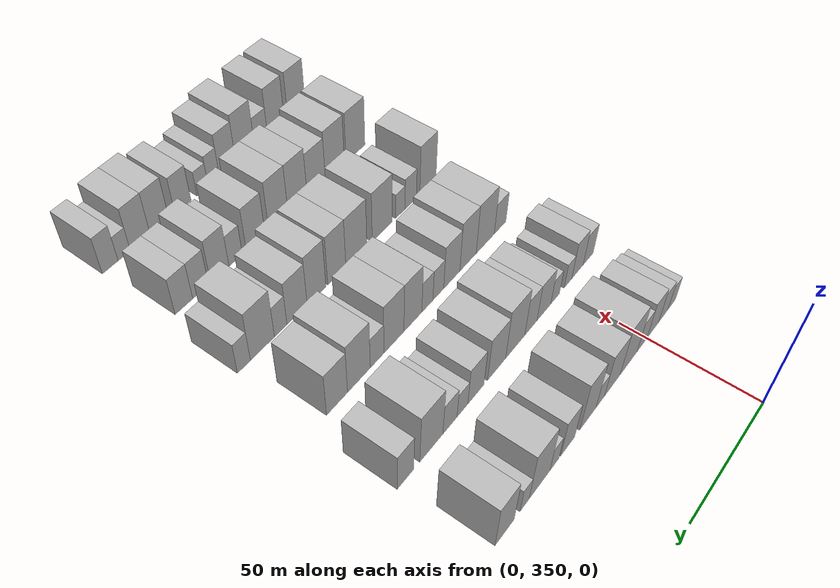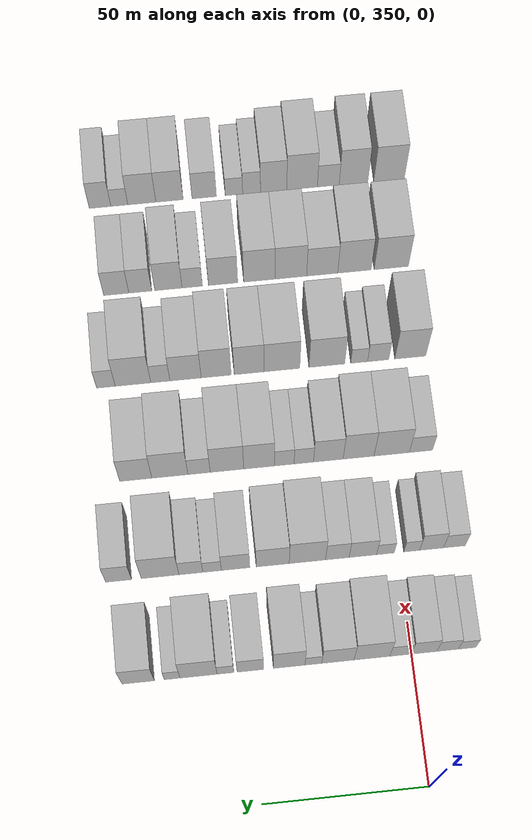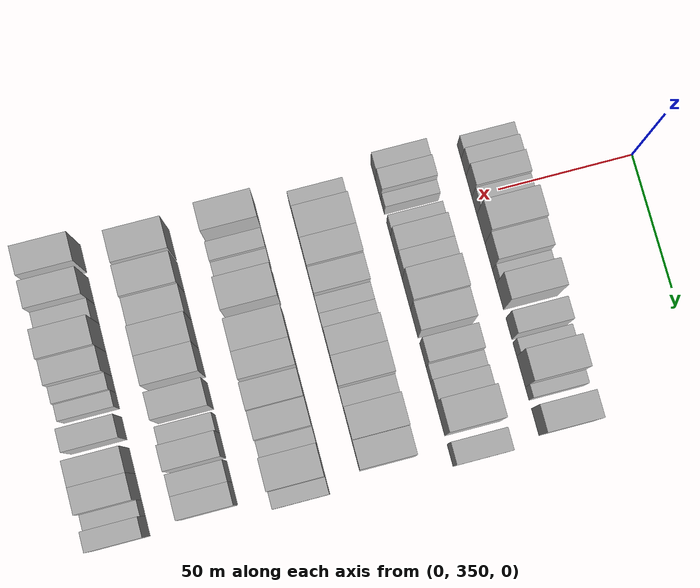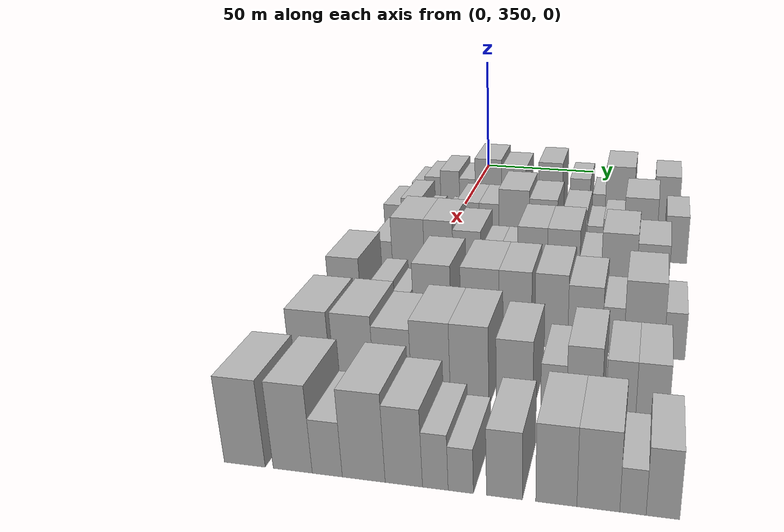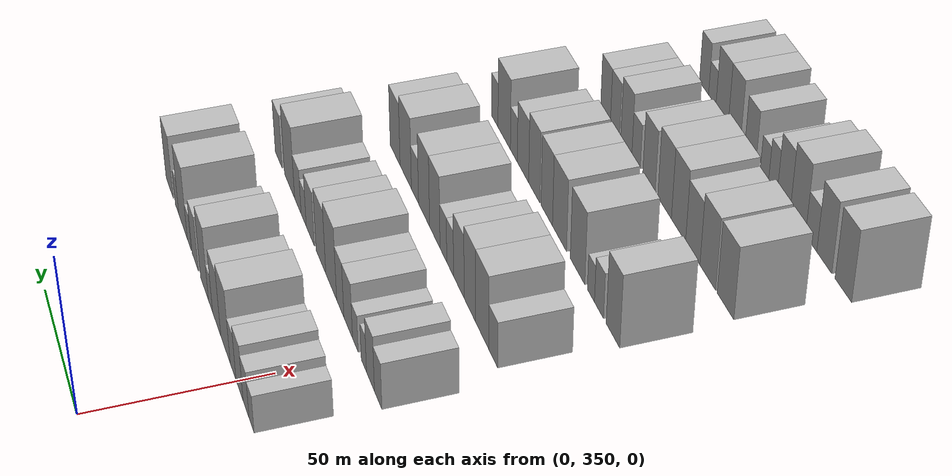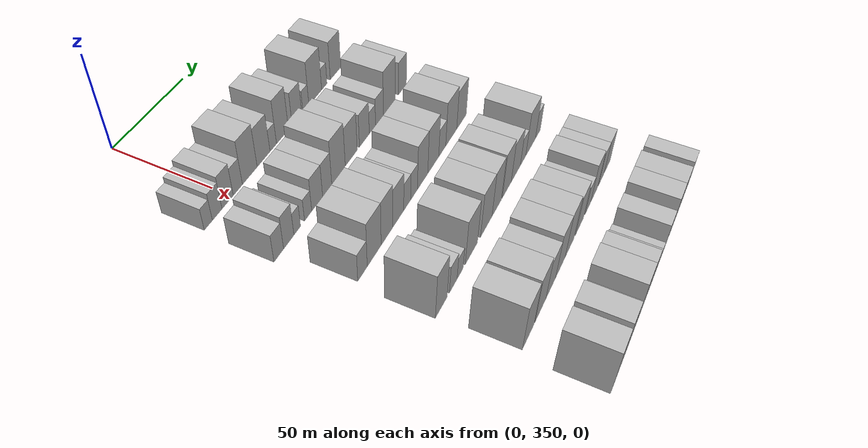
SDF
<sdf version="1.6">
 <world name="default">
  <model name="building_99">
   <static>1</static>
   <pose>50.0000 332.9799 0 0.000000 0.000000 0.000000</pose>
   <link name="link">
    <pose>0 0 6.00 0 0 0</pose>
    <collision name="collision"><geometry><box><size>20.0000 5.4703 12.0000</size></box></geometry></collision>
    <visual name="visual">
     <cast_shadows>0</cast_shadows>
     <geometry><box><size>20.0000 5.4703 12.0000</size></box></geometry>
     <material>
      <script>
       <uri>model://HANNAS_wall/materials/scripts</uri>
       <uri>model://HANNAS_wall/materials/textures</uri>
       <name>vrc/HANNAS_wall</name>
      </script>
     </material>
    </visual>
   </link>
  </model>
  <model name="building_100">
   <static>1</static>
   <pose>50.0000 339.0162 0 0.000000 0.000000 0.000000</pose>
   <link name="link">
    <pose>0 0 7.50 0 0 0</pose>
    <collision name="collision"><geometry><box><size>20.0000 6.6022 15.0000</size></box></geometry></collision>
    <visual name="visual">
     <cast_shadows>0</cast_shadows>
     <geometry><box><size>20.0000 6.6022 15.0000</size></box></geometry>
     <material>
      <script>
       <uri>model://HANNAS_wall/materials/scripts</uri>
       <uri>model://HANNAS_wall/materials/textures</uri>
       <name>vrc/HANNAS_wall</name>
      </script>
     </material>
    </visual>
   </link>
  </model>
  <model name="building_101">
   <static>1</static>
   <pose>50.0000 346.2824 0 0.000000 0.000000 0.000000</pose>
   <link name="link">
    <pose>0 0 9.00 0 0 0</pose>
    <collision name="collision"><geometry><box><size>20.0000 7.9302 18.0000</size></box></geometry></collision>
    <visual name="visual">
     <cast_shadows>0</cast_shadows>
     <geometry><box><size>20.0000 7.9302 18.0000</size></box></geometry>
     <material>
      <script>
       <uri>model://HANNAS_wall/materials/scripts</uri>
       <uri>model://HANNAS_wall/materials/textures</uri>
       <name>vrc/HANNAS_wall</name>
      </script>
     </material>
    </visual>
   </link>
  </model>
  <model name="building_102">
   <static>1</static>
   <pose>50.0000 353.5440 0 0.000000 0.000000 0.000000</pose>
   <link name="link">
    <pose>0 0 7.50 0 0 0</pose>
    <collision name="collision"><geometry><box><size>20.0000 6.5930 15.0000</size></box></geometry></collision>
    <visual name="visual">
     <cast_shadows>0</cast_shadows>
     <geometry><box><size>20.0000 6.5930 15.0000</size></box></geometry>
     <material>
      <script>
       <uri>model://HANNAS_wall/materials/scripts</uri>
       <uri>model://HANNAS_wall/materials/textures</uri>
       <name>vrc/HANNAS_wall</name>
      </script>
     </material>
    </visual>
   </link>
  </model>
  <model name="building_103">
   <static>1</static>
   <pose>50.0000 362.3261 0 0.000000 0.000000 0.000000</pose>
   <link name="link">
    <pose>0 0 12.00 0 0 0</pose>
    <collision name="collision"><geometry><box><size>20.0000 10.9712 24.0000</size></box></geometry></collision>
    <visual name="visual">
     <cast_shadows>0</cast_shadows>
     <geometry><box><size>20.0000 10.9712 24.0000</size></box></geometry>
     <material>
      <script>
       <uri>model://HANNAS_wall/materials/scripts</uri>
       <uri>model://HANNAS_wall/materials/textures</uri>
       <name>vrc/HANNAS_wall</name>
      </script>
     </material>
    </visual>
   </link>
  </model>
  <model name="building_104">
   <static>1</static>
   <pose>50.0000 372.7573 0 0.000000 0.000000 0.000000</pose>
   <link name="link">
    <pose>0 0 10.50 0 0 0</pose>
    <collision name="collision"><geometry><box><size>20.0000 9.8912 21.0000</size></box></geometry></collision>
    <visual name="visual">
     <cast_shadows>0</cast_shadows>
     <geometry><box><size>20.0000 9.8912 21.0000</size></box></geometry>
     <material>
      <script>
       <uri>model://HANNAS_wall/materials/scripts</uri>
       <uri>model://HANNAS_wall/materials/textures</uri>
       <name>vrc/HANNAS_wall</name>
      </script>
     </material>
    </visual>
   </link>
  </model>
  <model name="building_105">
   <static>1</static>
   <pose>50.0000 380.2730 0 0.000000 0.000000 0.000000</pose>
   <link name="link">
    <pose>0 0 6.00 0 0 0</pose>
    <collision name="collision"><geometry><box><size>20.0000 5.1401 12.0000</size></box></geometry></collision>
    <visual name="visual">
     <cast_shadows>0</cast_shadows>
     <geometry><box><size>20.0000 5.1401 12.0000</size></box></geometry>
     <material>
      <script>
       <uri>model://HANNAS_wall/materials/scripts</uri>
       <uri>model://HANNAS_wall/materials/textures</uri>
       <name>vrc/HANNAS_wall</name>
      </script>
     </material>
    </visual>
   </link>
  </model>
  <model name="building_106">
   <static>1</static>
   <pose>50.0000 387.6704 0 0.000000 0.000000 0.000000</pose>
   <link name="link">
    <pose>0 0 12.00 0 0 0</pose>
    <collision name="collision"><geometry><box><size>20.0000 9.6546 24.0000</size></box></geometry></collision>
    <visual name="visual">
     <cast_shadows>0</cast_shadows>
     <geometry><box><size>20.0000 9.6546 24.0000</size></box></geometry>
     <material>
      <script>
       <uri>model://HANNAS_wall/materials/scripts</uri>
       <uri>model://HANNAS_wall/materials/textures</uri>
       <name>vrc/HANNAS_wall</name>
      </script>
     </material>
    </visual>
   </link>
  </model>
  <model name="building_107">
   <static>1</static>
   <pose>50.0000 399.5370 0 0.000000 0.000000 0.000000</pose>
   <link name="link">
    <pose>0 0 9.00 0 0 0</pose>
    <collision name="collision"><geometry><box><size>20.0000 8.0787 18.0000</size></box></geometry></collision>
    <visual name="visual">
     <cast_shadows>0</cast_shadows>
     <geometry><box><size>20.0000 8.0787 18.0000</size></box></geometry>
     <material>
      <script>
       <uri>model://HANNAS_wall/materials/scripts</uri>
       <uri>model://HANNAS_wall/materials/textures</uri>
       <name>vrc/HANNAS_wall</name>
      </script>
     </material>
    </visual>
   </link>
  </model>
  <model name="building_108">
   <static>1</static>
   <pose>50.0000 407.1364 0 0.000000 0.000000 0.000000</pose>
   <link name="link">
    <pose>0 0 6.00 0 0 0</pose>
    <collision name="collision"><geometry><box><size>20.0000 5.1201 12.0000</size></box></geometry></collision>
    <visual name="visual">
     <cast_shadows>0</cast_shadows>
     <geometry><box><size>20.0000 5.1201 12.0000</size></box></geometry>
     <material>
      <script>
       <uri>model://HANNAS_wall/materials/scripts</uri>
       <uri>model://HANNAS_wall/materials/textures</uri>
       <name>vrc/HANNAS_wall</name>
      </script>
     </material>
    </visual>
   </link>
  </model>
  <model name="building_109">
   <static>1</static>
   <pose>50.0000 415.3450 0 0.000000 0.000000 0.000000</pose>
   <link name="link">
    <pose>0 0 12.00 0 0 0</pose>
    <collision name="collision"><geometry><box><size>20.0000 11.2971 24.0000</size></box></geometry></collision>
    <visual name="visual">
     <cast_shadows>0</cast_shadows>
     <geometry><box><size>20.0000 11.2971 24.0000</size></box></geometry>
     <material>
      <script>
       <uri>model://HANNAS_wall/materials/scripts</uri>
       <uri>model://HANNAS_wall/materials/textures</uri>
       <name>vrc/HANNAS_wall</name>
      </script>
     </material>
    </visual>
   </link>
  </model>
  <model name="building_110">
   <static>1</static>
   <pose>50.0000 423.3942 0 0.000000 0.000000 0.000000</pose>
   <link name="link">
    <pose>0 0 6.00 0 0 0</pose>
    <collision name="collision"><geometry><box><size>20.0000 4.8012 12.0000</size></box></geometry></collision>
    <visual name="visual">
     <cast_shadows>0</cast_shadows>
     <geometry><box><size>20.0000 4.8012 12.0000</size></box></geometry>
     <material>
      <script>
       <uri>model://HANNAS_wall/materials/scripts</uri>
       <uri>model://HANNAS_wall/materials/textures</uri>
       <name>vrc/HANNAS_wall</name>
      </script>
     </material>
    </visual>
   </link>
  </model>
  <model name="building_111">
   <static>1</static>
   <pose>50.0000 433.7084 0 0.000000 0.000000 0.000000</pose>
   <link name="link">
    <pose>0 0 10.50 0 0 0</pose>
    <collision name="collision"><geometry><box><size>20.0000 9.8273 21.0000</size></box></geometry></collision>
    <visual name="visual">
     <cast_shadows>0</cast_shadows>
     <geometry><box><size>20.0000 9.8273 21.0000</size></box></geometry>
     <material>
      <script>
       <uri>model://HANNAS_wall/materials/scripts</uri>
       <uri>model://HANNAS_wall/materials/textures</uri>
       <name>vrc/HANNAS_wall</name>
      </script>
     </material>
    </visual>
   </link>
  </model>
  <model name="building_212">
   <static>1</static>
   <pose>82.0000 332.3970 0 0.000000 0.000000 0.000000</pose>
   <link name="link">
    <pose>0 0 7.50 0 0 0</pose>
    <collision name="collision"><geometry><box><size>20.0000 6.8704 15.0000</size></box></geometry></collision>
    <visual name="visual">
     <cast_shadows>0</cast_shadows>
     <geometry><box><size>20.0000 6.8704 15.0000</size></box></geometry>
     <material>
      <script>
       <uri>model://HANNAS_wall/materials/scripts</uri>
       <uri>model://HANNAS_wall/materials/textures</uri>
       <name>vrc/HANNAS_wall</name>
      </script>
     </material>
    </visual>
   </link>
  </model>
  <model name="building_213">
   <static>1</static>
   <pose>82.0000 339.5961 0 0.000000 0.000000 0.000000</pose>
   <link name="link">
    <pose>0 0 9.00 0 0 0</pose>
    <collision name="collision"><geometry><box><size>20.0000 7.5278 18.0000</size></box></geometry></collision>
    <visual name="visual">
     <cast_shadows>0</cast_shadows>
     <geometry><box><size>20.0000 7.5278 18.0000</size></box></geometry>
     <material>
      <script>
       <uri>model://HANNAS_wall/materials/scripts</uri>
       <uri>model://HANNAS_wall/materials/textures</uri>
       <name>vrc/HANNAS_wall</name>
      </script>
     </material>
    </visual>
   </link>
  </model>
  <model name="building_214">
   <static>1</static>
   <pose>82.0000 345.8429 0 0.000000 0.000000 0.000000</pose>
   <link name="link">
    <pose>0 0 6.00 0 0 0</pose>
    <collision name="collision"><geometry><box><size>20.0000 4.9657 12.0000</size></box></geometry></collision>
    <visual name="visual">
     <cast_shadows>0</cast_shadows>
     <geometry><box><size>20.0000 4.9657 12.0000</size></box></geometry>
     <material>
      <script>
       <uri>model://HANNAS_wall/materials/scripts</uri>
       <uri>model://HANNAS_wall/materials/textures</uri>
       <name>vrc/HANNAS_wall</name>
      </script>
     </material>
    </visual>
   </link>
  </model>
  <model name="building_215">
   <static>1</static>
   <pose>82.0000 354.0995 0 0.000000 0.000000 0.000000</pose>
   <link name="link">
    <pose>0 0 6.00 0 0 0</pose>
    <collision name="collision"><geometry><box><size>20.0000 5.5475 12.0000</size></box></geometry></collision>
    <visual name="visual">
     <cast_shadows>0</cast_shadows>
     <geometry><box><size>20.0000 5.5475 12.0000</size></box></geometry>
     <material>
      <script>
       <uri>model://HANNAS_wall/materials/scripts</uri>
       <uri>model://HANNAS_wall/materials/textures</uri>
       <name>vrc/HANNAS_wall</name>
      </script>
     </material>
    </visual>
   </link>
  </model>
  <model name="building_216">
   <static>1</static>
   <pose>82.0000 361.1721 0 0.000000 0.000000 0.000000</pose>
   <link name="link">
    <pose>0 0 9.00 0 0 0</pose>
    <collision name="collision"><geometry><box><size>20.0000 8.5978 18.0000</size></box></geometry></collision>
    <visual name="visual">
     <cast_shadows>0</cast_shadows>
     <geometry><box><size>20.0000 8.5978 18.0000</size></box></geometry>
     <material>
      <script>
       <uri>model://HANNAS_wall/materials/scripts</uri>
       <uri>model://HANNAS_wall/materials/textures</uri>
       <name>vrc/HANNAS_wall</name>
      </script>
     </material>
    </visual>
   </link>
  </model>
  <model name="building_217">
   <static>1</static>
   <pose>82.0000 369.1668 0 0.000000 0.000000 0.000000</pose>
   <link name="link">
    <pose>0 0 9.00 0 0 0</pose>
    <collision name="collision"><geometry><box><size>20.0000 7.3916 18.0000</size></box></geometry></collision>
    <visual name="visual">
     <cast_shadows>0</cast_shadows>
     <geometry><box><size>20.0000 7.3916 18.0000</size></box></geometry>
     <material>
      <script>
       <uri>model://HANNAS_wall/materials/scripts</uri>
       <uri>model://HANNAS_wall/materials/textures</uri>
       <name>vrc/HANNAS_wall</name>
      </script>
     </material>
    </visual>
   </link>
  </model>
  <model name="building_218">
   <static>1</static>
   <pose>82.0000 378.5354 0 0.000000 0.000000 0.000000</pose>
   <link name="link">
    <pose>0 0 12.00 0 0 0</pose>
    <collision name="collision"><geometry><box><size>20.0000 11.3456 24.0000</size></box></geometry></collision>
    <visual name="visual">
     <cast_shadows>0</cast_shadows>
     <geometry><box><size>20.0000 11.3456 24.0000</size></box></geometry>
     <material>
      <script>
       <uri>model://HANNAS_wall/materials/scripts</uri>
       <uri>model://HANNAS_wall/materials/textures</uri>
       <name>vrc/HANNAS_wall</name>
      </script>
     </material>
    </visual>
   </link>
  </model>
  <model name="building_219">
   <static>1</static>
   <pose>82.0000 389.3567 0 0.000000 0.000000 0.000000</pose>
   <link name="link">
    <pose>0 0 10.50 0 0 0</pose>
    <collision name="collision"><geometry><box><size>20.0000 10.2970 21.0000</size></box></geometry></collision>
    <visual name="visual">
     <cast_shadows>0</cast_shadows>
     <geometry><box><size>20.0000 10.2970 21.0000</size></box></geometry>
     <material>
      <script>
       <uri>model://HANNAS_wall/materials/scripts</uri>
       <uri>model://HANNAS_wall/materials/textures</uri>
       <name>vrc/HANNAS_wall</name>
      </script>
     </material>
    </visual>
   </link>
  </model>
  <model name="building_220">
   <static>1</static>
   <pose>82.0000 400.9450 0 0.000000 0.000000 0.000000</pose>
   <link name="link">
    <pose>0 0 9.00 0 0 0</pose>
    <collision name="collision"><geometry><box><size>20.0000 8.8796 18.0000</size></box></geometry></collision>
    <visual name="visual">
     <cast_shadows>0</cast_shadows>
     <geometry><box><size>20.0000 8.8796 18.0000</size></box></geometry>
     <material>
      <script>
       <uri>model://HANNAS_wall/materials/scripts</uri>
       <uri>model://HANNAS_wall/materials/textures</uri>
       <name>vrc/HANNAS_wall</name>
      </script>
     </material>
    </visual>
   </link>
  </model>
  <model name="building_221">
   <static>1</static>
   <pose>82.0000 408.2661 0 0.000000 0.000000 0.000000</pose>
   <link name="link">
    <pose>0 0 6.00 0 0 0</pose>
    <collision name="collision"><geometry><box><size>20.0000 5.7625 12.0000</size></box></geometry></collision>
    <visual name="visual">
     <cast_shadows>0</cast_shadows>
     <geometry><box><size>20.0000 5.7625 12.0000</size></box></geometry>
     <material>
      <script>
       <uri>model://HANNAS_wall/materials/scripts</uri>
       <uri>model://HANNAS_wall/materials/textures</uri>
       <name>vrc/HANNAS_wall</name>
      </script>
     </material>
    </visual>
   </link>
  </model>
  <model name="building_222">
   <static>1</static>
   <pose>82.0000 414.8607 0 0.000000 0.000000 0.000000</pose>
   <link name="link">
    <pose>0 0 7.50 0 0 0</pose>
    <collision name="collision"><geometry><box><size>20.0000 7.4268 15.0000</size></box></geometry></collision>
    <visual name="visual">
     <cast_shadows>0</cast_shadows>
     <geometry><box><size>20.0000 7.4268 15.0000</size></box></geometry>
     <material>
      <script>
       <uri>model://HANNAS_wall/materials/scripts</uri>
       <uri>model://HANNAS_wall/materials/textures</uri>
       <name>vrc/HANNAS_wall</name>
      </script>
     </material>
    </visual>
   </link>
  </model>
  <model name="building_223">
   <static>1</static>
   <pose>82.0000 424.4327 0 0.000000 0.000000 0.000000</pose>
   <link name="link">
    <pose>0 0 12.00 0 0 0</pose>
    <collision name="collision"><geometry><box><size>20.0000 11.7171 24.0000</size></box></geometry></collision>
    <visual name="visual">
     <cast_shadows>0</cast_shadows>
     <geometry><box><size>20.0000 11.7171 24.0000</size></box></geometry>
     <material>
      <script>
       <uri>model://HANNAS_wall/materials/scripts</uri>
       <uri>model://HANNAS_wall/materials/textures</uri>
       <name>vrc/HANNAS_wall</name>
      </script>
     </material>
    </visual>
   </link>
  </model>
  <model name="building_224">
   <static>1</static>
   <pose>82.0000 437.3087 0 0.000000 0.000000 0.000000</pose>
   <link name="link">
    <pose>0 0 9.00 0 0 0</pose>
    <collision name="collision"><geometry><box><size>20.0000 8.0349 18.0000</size></box></geometry></collision>
    <visual name="visual">
     <cast_shadows>0</cast_shadows>
     <geometry><box><size>20.0000 8.0349 18.0000</size></box></geometry>
     <material>
      <script>
       <uri>model://HANNAS_wall/materials/scripts</uri>
       <uri>model://HANNAS_wall/materials/textures</uri>
       <name>vrc/HANNAS_wall</name>
      </script>
     </material>
    </visual>
   </link>
  </model>
  <model name="building_331">
   <static>1</static>
   <pose>114.0000 338.6234 0 0.000000 0.000000 0.000000</pose>
   <link name="link">
    <pose>0 0 7.50 0 0 0</pose>
    <collision name="collision"><geometry><box><size>20.0000 7.4297 15.0000</size></box></geometry></collision>
    <visual name="visual">
     <cast_shadows>0</cast_shadows>
     <geometry><box><size>20.0000 7.4297 15.0000</size></box></geometry>
     <material>
      <script>
       <uri>model://HANNAS_wall/materials/scripts</uri>
       <uri>model://HANNAS_wall/materials/textures</uri>
       <name>vrc/HANNAS_wall</name>
      </script>
     </material>
    </visual>
   </link>
  </model>
  <model name="building_332">
   <static>1</static>
   <pose>114.0000 347.9901 0 0.000000 0.000000 0.000000</pose>
   <link name="link">
    <pose>0 0 12.00 0 0 0</pose>
    <collision name="collision"><geometry><box><size>20.0000 11.3037 24.0000</size></box></geometry></collision>
    <visual name="visual">
     <cast_shadows>0</cast_shadows>
     <geometry><box><size>20.0000 11.3037 24.0000</size></box></geometry>
     <material>
      <script>
       <uri>model://HANNAS_wall/materials/scripts</uri>
       <uri>model://HANNAS_wall/materials/textures</uri>
       <name>vrc/HANNAS_wall</name>
      </script>
     </material>
    </visual>
   </link>
  </model>
  <model name="building_333">
   <static>1</static>
   <pose>114.0000 358.5962 0 0.000000 0.000000 0.000000</pose>
   <link name="link">
    <pose>0 0 12.00 0 0 0</pose>
    <collision name="collision"><geometry><box><size>20.0000 9.9084 24.0000</size></box></geometry></collision>
    <visual name="visual">
     <cast_shadows>0</cast_shadows>
     <geometry><box><size>20.0000 9.9084 24.0000</size></box></geometry>
     <material>
      <script>
       <uri>model://HANNAS_wall/materials/scripts</uri>
       <uri>model://HANNAS_wall/materials/textures</uri>
       <name>vrc/HANNAS_wall</name>
      </script>
     </material>
    </visual>
   </link>
  </model>
  <model name="building_334">
   <static>1</static>
   <pose>114.0000 368.2804 0 0.000000 0.000000 0.000000</pose>
   <link name="link">
    <pose>0 0 10.50 0 0 0</pose>
    <collision name="collision"><geometry><box><size>20.0000 9.4601 21.0000</size></box></geometry></collision>
    <visual name="visual">
     <cast_shadows>0</cast_shadows>
     <geometry><box><size>20.0000 9.4601 21.0000</size></box></geometry>
     <material>
      <script>
       <uri>model://HANNAS_wall/materials/scripts</uri>
       <uri>model://HANNAS_wall/materials/textures</uri>
       <name>vrc/HANNAS_wall</name>
      </script>
     </material>
    </visual>
   </link>
  </model>
  <model name="building_335">
   <static>1</static>
   <pose>114.0000 376.1076 0 0.000000 0.000000 0.000000</pose>
   <link name="link">
    <pose>0 0 7.50 0 0 0</pose>
    <collision name="collision"><geometry><box><size>20.0000 6.1944 15.0000</size></box></geometry></collision>
    <visual name="visual">
     <cast_shadows>0</cast_shadows>
     <geometry><box><size>20.0000 6.1944 15.0000</size></box></geometry>
     <material>
      <script>
       <uri>model://HANNAS_wall/materials/scripts</uri>
       <uri>model://HANNAS_wall/materials/textures</uri>
       <name>vrc/HANNAS_wall</name>
      </script>
     </material>
    </visual>
   </link>
  </model>
  <model name="building_336">
   <static>1</static>
   <pose>114.0000 382.3181 0 0.000000 0.000000 0.000000</pose>
   <link name="link">
    <pose>0 0 7.50 0 0 0</pose>
    <collision name="collision"><geometry><box><size>20.0000 6.2265 15.0000</size></box></geometry></collision>
    <visual name="visual">
     <cast_shadows>0</cast_shadows>
     <geometry><box><size>20.0000 6.2265 15.0000</size></box></geometry>
     <material>
      <script>
       <uri>model://HANNAS_wall/materials/scripts</uri>
       <uri>model://HANNAS_wall/materials/textures</uri>
       <name>vrc/HANNAS_wall</name>
      </script>
     </material>
    </visual>
   </link>
  </model>
  <model name="building_337">
   <static>1</static>
   <pose>114.0000 390.3432 0 0.000000 0.000000 0.000000</pose>
   <link name="link">
    <pose>0 0 12.00 0 0 0</pose>
    <collision name="collision"><geometry><box><size>20.0000 9.8236 24.0000</size></box></geometry></collision>
    <visual name="visual">
     <cast_shadows>0</cast_shadows>
     <geometry><box><size>20.0000 9.8236 24.0000</size></box></geometry>
     <material>
      <script>
       <uri>model://HANNAS_wall/materials/scripts</uri>
       <uri>model://HANNAS_wall/materials/textures</uri>
       <name>vrc/HANNAS_wall</name>
      </script>
     </material>
    </visual>
   </link>
  </model>
  <model name="building_338">
   <static>1</static>
   <pose>114.0000 400.5810 0 0.000000 0.000000 0.000000</pose>
   <link name="link">
    <pose>0 0 12.00 0 0 0</pose>
    <collision name="collision"><geometry><box><size>20.0000 10.6521 24.0000</size></box></geometry></collision>
    <visual name="visual">
     <cast_shadows>0</cast_shadows>
     <geometry><box><size>20.0000 10.6521 24.0000</size></box></geometry>
     <material>
      <script>
       <uri>model://HANNAS_wall/materials/scripts</uri>
       <uri>model://HANNAS_wall/materials/textures</uri>
       <name>vrc/HANNAS_wall</name>
      </script>
     </material>
    </visual>
   </link>
  </model>
  <model name="building_339">
   <static>1</static>
   <pose>114.0000 409.4451 0 0.000000 0.000000 0.000000</pose>
   <link name="link">
    <pose>0 0 7.50 0 0 0</pose>
    <collision name="collision"><geometry><box><size>20.0000 7.0760 15.0000</size></box></geometry></collision>
    <visual name="visual">
     <cast_shadows>0</cast_shadows>
     <geometry><box><size>20.0000 7.0760 15.0000</size></box></geometry>
     <material>
      <script>
       <uri>model://HANNAS_wall/materials/scripts</uri>
       <uri>model://HANNAS_wall/materials/textures</uri>
       <name>vrc/HANNAS_wall</name>
      </script>
     </material>
    </visual>
   </link>
  </model>
  <model name="building_340">
   <static>1</static>
   <pose>114.0000 418.6931 0 0.000000 0.000000 0.000000</pose>
   <link name="link">
    <pose>0 0 12.00 0 0 0</pose>
    <collision name="collision"><geometry><box><size>20.0000 11.4201 24.0000</size></box></geometry></collision>
    <visual name="visual">
     <cast_shadows>0</cast_shadows>
     <geometry><box><size>20.0000 11.4201 24.0000</size></box></geometry>
     <material>
      <script>
       <uri>model://HANNAS_wall/materials/scripts</uri>
       <uri>model://HANNAS_wall/materials/textures</uri>
       <name>vrc/HANNAS_wall</name>
      </script>
     </material>
    </visual>
   </link>
  </model>
  <model name="building_341">
   <static>1</static>
   <pose>114.0000 429.4956 0 0.000000 0.000000 0.000000</pose>
   <link name="link">
    <pose>0 0 10.50 0 0 0</pose>
    <collision name="collision"><geometry><box><size>20.0000 10.1849 21.0000</size></box></geometry></collision>
    <visual name="visual">
     <cast_shadows>0</cast_shadows>
     <geometry><box><size>20.0000 10.1849 21.0000</size></box></geometry>
     <material>
      <script>
       <uri>model://HANNAS_wall/materials/scripts</uri>
       <uri>model://HANNAS_wall/materials/textures</uri>
       <name>vrc/HANNAS_wall</name>
      </script>
     </material>
    </visual>
   </link>
  </model>
  <model name="building_451">
   <static>1</static>
   <pose>146.0000 337.8370 0 0.000000 0.000000 0.000000</pose>
   <link name="link">
    <pose>0 0 12.00 0 0 0</pose>
    <collision name="collision"><geometry><box><size>20.0000 10.0962 24.0000</size></box></geometry></collision>
    <visual name="visual">
     <cast_shadows>0</cast_shadows>
     <geometry><box><size>20.0000 10.0962 24.0000</size></box></geometry>
     <material>
      <script>
       <uri>model://HANNAS_wall/materials/scripts</uri>
       <uri>model://HANNAS_wall/materials/textures</uri>
       <name>vrc/HANNAS_wall</name>
      </script>
     </material>
    </visual>
   </link>
  </model>
  <model name="building_452">
   <static>1</static>
   <pose>146.0000 348.3369 0 0.000000 0.000000 0.000000</pose>
   <link name="link">
    <pose>0 0 7.50 0 0 0</pose>
    <collision name="collision"><geometry><box><size>20.0000 6.9037 15.0000</size></box></geometry></collision>
    <visual name="visual">
     <cast_shadows>0</cast_shadows>
     <geometry><box><size>20.0000 6.9037 15.0000</size></box></geometry>
     <material>
      <script>
       <uri>model://HANNAS_wall/materials/scripts</uri>
       <uri>model://HANNAS_wall/materials/textures</uri>
       <name>vrc/HANNAS_wall</name>
      </script>
     </material>
    </visual>
   </link>
  </model>
  <model name="building_453">
   <static>1</static>
   <pose>146.0000 354.5344 0 0.000000 0.000000 0.000000</pose>
   <link name="link">
    <pose>0 0 6.00 0 0 0</pose>
    <collision name="collision"><geometry><box><size>20.0000 5.4911 12.0000</size></box></geometry></collision>
    <visual name="visual">
     <cast_shadows>0</cast_shadows>
     <geometry><box><size>20.0000 5.4911 12.0000</size></box></geometry>
     <material>
      <script>
       <uri>model://HANNAS_wall/materials/scripts</uri>
       <uri>model://HANNAS_wall/materials/textures</uri>
       <name>vrc/HANNAS_wall</name>
      </script>
     </material>
    </visual>
   </link>
  </model>
  <model name="building_454">
   <static>1</static>
   <pose>146.0000 365.0774 0 0.000000 0.000000 0.000000</pose>
   <link name="link">
    <pose>0 0 12.00 0 0 0</pose>
    <collision name="collision"><geometry><box><size>20.0000 11.5949 24.0000</size></box></geometry></collision>
    <visual name="visual">
     <cast_shadows>0</cast_shadows>
     <geometry><box><size>20.0000 11.5949 24.0000</size></box></geometry>
     <material>
      <script>
       <uri>model://HANNAS_wall/materials/scripts</uri>
       <uri>model://HANNAS_wall/materials/textures</uri>
       <name>vrc/HANNAS_wall</name>
      </script>
     </material>
    </visual>
   </link>
  </model>
  <model name="building_455">
   <static>1</static>
   <pose>146.0000 379.6783 0 0.000000 0.000000 0.000000</pose>
   <link name="link">
    <pose>0 0 12.00 0 0 0</pose>
    <collision name="collision"><geometry><box><size>20.0000 11.6069 24.0000</size></box></geometry></collision>
    <visual name="visual">
     <cast_shadows>0</cast_shadows>
     <geometry><box><size>20.0000 11.6069 24.0000</size></box></geometry>
     <material>
      <script>
       <uri>model://HANNAS_wall/materials/scripts</uri>
       <uri>model://HANNAS_wall/materials/textures</uri>
       <name>vrc/HANNAS_wall</name>
      </script>
     </material>
    </visual>
   </link>
  </model>
  <model name="building_456">
   <static>1</static>
   <pose>146.0000 390.3240 0 0.000000 0.000000 0.000000</pose>
   <link name="link">
    <pose>0 0 12.00 0 0 0</pose>
    <collision name="collision"><geometry><box><size>20.0000 9.6845 24.0000</size></box></geometry></collision>
    <visual name="visual">
     <cast_shadows>0</cast_shadows>
     <geometry><box><size>20.0000 9.6845 24.0000</size></box></geometry>
     <material>
      <script>
       <uri>model://HANNAS_wall/materials/scripts</uri>
       <uri>model://HANNAS_wall/materials/textures</uri>
       <name>vrc/HANNAS_wall</name>
      </script>
     </material>
    </visual>
   </link>
  </model>
  <model name="building_457">
   <static>1</static>
   <pose>146.0000 401.0217 0 0.000000 0.000000 0.000000</pose>
   <link name="link">
    <pose>0 0 12.00 0 0 0</pose>
    <collision name="collision"><geometry><box><size>20.0000 9.7108 24.0000</size></box></geometry></collision>
    <visual name="visual">
     <cast_shadows>0</cast_shadows>
     <geometry><box><size>20.0000 9.7108 24.0000</size></box></geometry>
     <material>
      <script>
       <uri>model://HANNAS_wall/materials/scripts</uri>
       <uri>model://HANNAS_wall/materials/textures</uri>
       <name>vrc/HANNAS_wall</name>
      </script>
     </material>
    </visual>
   </link>
  </model>
  <model name="building_458">
   <static>1</static>
   <pose>146.0000 410.9438 0 0.000000 0.000000 0.000000</pose>
   <link name="link">
    <pose>0 0 10.50 0 0 0</pose>
    <collision name="collision"><geometry><box><size>20.0000 10.1334 21.0000</size></box></geometry></collision>
    <visual name="visual">
     <cast_shadows>0</cast_shadows>
     <geometry><box><size>20.0000 10.1334 21.0000</size></box></geometry>
     <material>
      <script>
       <uri>model://HANNAS_wall/materials/scripts</uri>
       <uri>model://HANNAS_wall/materials/textures</uri>
       <name>vrc/HANNAS_wall</name>
      </script>
     </material>
    </visual>
   </link>
  </model>
  <model name="building_459">
   <static>1</static>
   <pose>146.0000 419.1057 0 0.000000 0.000000 0.000000</pose>
   <link name="link">
    <pose>0 0 7.50 0 0 0</pose>
    <collision name="collision"><geometry><box><size>20.0000 6.1904 15.0000</size></box></geometry></collision>
    <visual name="visual">
     <cast_shadows>0</cast_shadows>
     <geometry><box><size>20.0000 6.1904 15.0000</size></box></geometry>
     <material>
      <script>
       <uri>model://HANNAS_wall/materials/scripts</uri>
       <uri>model://HANNAS_wall/materials/textures</uri>
       <name>vrc/HANNAS_wall</name>
      </script>
     </material>
    </visual>
   </link>
  </model>
  <model name="building_460">
   <static>1</static>
   <pose>146.0000 427.9393 0 0.000000 0.000000 0.000000</pose>
   <link name="link">
    <pose>0 0 12.00 0 0 0</pose>
    <collision name="collision"><geometry><box><size>20.0000 11.4768 24.0000</size></box></geometry></collision>
    <visual name="visual">
     <cast_shadows>0</cast_shadows>
     <geometry><box><size>20.0000 11.4768 24.0000</size></box></geometry>
     <material>
      <script>
       <uri>model://HANNAS_wall/materials/scripts</uri>
       <uri>model://HANNAS_wall/materials/textures</uri>
       <name>vrc/HANNAS_wall</name>
      </script>
     </material>
    </visual>
   </link>
  </model>
  <model name="building_461">
   <static>1</static>
   <pose>146.0000 436.6958 0 0.000000 0.000000 0.000000</pose>
   <link name="link">
    <pose>0 0 7.50 0 0 0</pose>
    <collision name="collision"><geometry><box><size>20.0000 6.0361 15.0000</size></box></geometry></collision>
    <visual name="visual">
     <cast_shadows>0</cast_shadows>
     <geometry><box><size>20.0000 6.0361 15.0000</size></box></geometry>
     <material>
      <script>
       <uri>model://HANNAS_wall/materials/scripts</uri>
       <uri>model://HANNAS_wall/materials/textures</uri>
       <name>vrc/HANNAS_wall</name>
      </script>
     </material>
    </visual>
   </link>
  </model>
  <model name="building_568">
   <static>1</static>
   <pose>178.0000 339.9684 0 0.000000 0.000000 0.000000</pose>
   <link name="link">
    <pose>0 0 12.00 0 0 0</pose>
    <collision name="collision"><geometry><box><size>20.0000 11.3775 24.0000</size></box></geometry></collision>
    <visual name="visual">
     <cast_shadows>0</cast_shadows>
     <geometry><box><size>20.0000 11.3775 24.0000</size></box></geometry>
     <material>
      <script>
       <uri>model://HANNAS_wall/materials/scripts</uri>
       <uri>model://HANNAS_wall/materials/textures</uri>
       <name>vrc/HANNAS_wall</name>
      </script>
     </material>
    </visual>
   </link>
  </model>
  <model name="building_569">
   <static>1</static>
   <pose>178.0000 352.2017 0 0.000000 0.000000 0.000000</pose>
   <link name="link">
    <pose>0 0 12.00 0 0 0</pose>
    <collision name="collision"><geometry><box><size>20.0000 11.0892 24.0000</size></box></geometry></collision>
    <visual name="visual">
     <cast_shadows>0</cast_shadows>
     <geometry><box><size>20.0000 11.0892 24.0000</size></box></geometry>
     <material>
      <script>
       <uri>model://HANNAS_wall/materials/scripts</uri>
       <uri>model://HANNAS_wall/materials/textures</uri>
       <name>vrc/HANNAS_wall</name>
      </script>
     </material>
    </visual>
   </link>
  </model>
  <model name="building_570">
   <static>1</static>
   <pose>178.0000 362.9106 0 0.000000 0.000000 0.000000</pose>
   <link name="link">
    <pose>0 0 10.50 0 0 0</pose>
    <collision name="collision"><geometry><box><size>20.0000 10.3285 21.0000</size></box></geometry></collision>
    <visual name="visual">
     <cast_shadows>0</cast_shadows>
     <geometry><box><size>20.0000 10.3285 21.0000</size></box></geometry>
     <material>
      <script>
       <uri>model://HANNAS_wall/materials/scripts</uri>
       <uri>model://HANNAS_wall/materials/textures</uri>
       <name>vrc/HANNAS_wall</name>
      </script>
     </material>
    </visual>
   </link>
  </model>
  <model name="building_571">
   <static>1</static>
   <pose>178.0000 373.3388 0 0.000000 0.000000 0.000000</pose>
   <link name="link">
    <pose>0 0 12.00 0 0 0</pose>
    <collision name="collision"><geometry><box><size>20.0000 10.5279 24.0000</size></box></geometry></collision>
    <visual name="visual">
     <cast_shadows>0</cast_shadows>
     <geometry><box><size>20.0000 10.5279 24.0000</size></box></geometry>
     <material>
      <script>
       <uri>model://HANNAS_wall/materials/scripts</uri>
       <uri>model://HANNAS_wall/materials/textures</uri>
       <name>vrc/HANNAS_wall</name>
      </script>
     </material>
    </visual>
   </link>
  </model>
  <model name="building_572">
   <static>1</static>
   <pose>178.0000 383.7634 0 0.000000 0.000000 0.000000</pose>
   <link name="link">
    <pose>0 0 12.00 0 0 0</pose>
    <collision name="collision"><geometry><box><size>20.0000 10.3213 24.0000</size></box></geometry></collision>
    <visual name="visual">
     <cast_shadows>0</cast_shadows>
     <geometry><box><size>20.0000 10.3213 24.0000</size></box></geometry>
     <material>
      <script>
       <uri>model://HANNAS_wall/materials/scripts</uri>
       <uri>model://HANNAS_wall/materials/textures</uri>
       <name>vrc/HANNAS_wall</name>
      </script>
     </material>
    </visual>
   </link>
  </model>
  <model name="building_573">
   <static>1</static>
   <pose>178.0000 395.7540 0 0.000000 0.000000 0.000000</pose>
   <link name="link">
    <pose>0 0 10.50 0 0 0</pose>
    <collision name="collision"><geometry><box><size>20.0000 9.6599 21.0000</size></box></geometry></collision>
    <visual name="visual">
     <cast_shadows>0</cast_shadows>
     <geometry><box><size>20.0000 9.6599 21.0000</size></box></geometry>
     <material>
      <script>
       <uri>model://HANNAS_wall/materials/scripts</uri>
       <uri>model://HANNAS_wall/materials/textures</uri>
       <name>vrc/HANNAS_wall</name>
      </script>
     </material>
    </visual>
   </link>
  </model>
  <model name="building_574">
   <static>1</static>
   <pose>178.0000 405.9372 0 0.000000 0.000000 0.000000</pose>
   <link name="link">
    <pose>0 0 7.50 0 0 0</pose>
    <collision name="collision"><geometry><box><size>20.0000 6.7066 15.0000</size></box></geometry></collision>
    <visual name="visual">
     <cast_shadows>0</cast_shadows>
     <geometry><box><size>20.0000 6.7066 15.0000</size></box></geometry>
     <material>
      <script>
       <uri>model://HANNAS_wall/materials/scripts</uri>
       <uri>model://HANNAS_wall/materials/textures</uri>
       <name>vrc/HANNAS_wall</name>
      </script>
     </material>
    </visual>
   </link>
  </model>
  <model name="building_575">
   <static>1</static>
   <pose>178.0000 413.7976 0 0.000000 0.000000 0.000000</pose>
   <link name="link">
    <pose>0 0 10.50 0 0 0</pose>
    <collision name="collision"><geometry><box><size>20.0000 9.0141 21.0000</size></box></geometry></collision>
    <visual name="visual">
     <cast_shadows>0</cast_shadows>
     <geometry><box><size>20.0000 9.0141 21.0000</size></box></geometry>
     <material>
      <script>
       <uri>model://HANNAS_wall/materials/scripts</uri>
       <uri>model://HANNAS_wall/materials/textures</uri>
       <name>vrc/HANNAS_wall</name>
      </script>
     </material>
    </visual>
   </link>
  </model>
  <model name="building_576">
   <static>1</static>
   <pose>178.0000 423.0905 0 0.000000 0.000000 0.000000</pose>
   <link name="link">
    <pose>0 0 9.00 0 0 0</pose>
    <collision name="collision"><geometry><box><size>20.0000 7.5717 18.0000</size></box></geometry></collision>
    <visual name="visual">
     <cast_shadows>0</cast_shadows>
     <geometry><box><size>20.0000 7.5717 18.0000</size></box></geometry>
     <material>
      <script>
       <uri>model://HANNAS_wall/materials/scripts</uri>
       <uri>model://HANNAS_wall/materials/textures</uri>
       <name>vrc/HANNAS_wall</name>
      </script>
     </material>
    </visual>
   </link>
  </model>
  <model name="building_577">
   <static>1</static>
   <pose>178.0000 431.0050 0 0.000000 0.000000 0.000000</pose>
   <link name="link">
    <pose>0 0 9.00 0 0 0</pose>
    <collision name="collision"><geometry><box><size>20.0000 8.2574 18.0000</size></box></geometry></collision>
    <visual name="visual">
     <cast_shadows>0</cast_shadows>
     <geometry><box><size>20.0000 8.2574 18.0000</size></box></geometry>
     <material>
      <script>
       <uri>model://HANNAS_wall/materials/scripts</uri>
       <uri>model://HANNAS_wall/materials/textures</uri>
       <name>vrc/HANNAS_wall</name>
      </script>
     </material>
    </visual>
   </link>
  </model>
  <model name="building_679">
   <static>1</static>
   <pose>210.0000 336.6073 0 0.000000 0.000000 0.000000</pose>
   <link name="link">
    <pose>0 0 12.00 0 0 0</pose>
    <collision name="collision"><geometry><box><size>20.0000 10.3789 24.0000</size></box></geometry></collision>
    <visual name="visual">
     <cast_shadows>0</cast_shadows>
     <geometry><box><size>20.0000 10.3789 24.0000</size></box></geometry>
     <material>
      <script>
       <uri>model://HANNAS_wall/materials/scripts</uri>
       <uri>model://HANNAS_wall/materials/textures</uri>
       <name>vrc/HANNAS_wall</name>
      </script>
     </material>
    </visual>
   </link>
  </model>
  <model name="building_680">
   <static>1</static>
   <pose>210.0000 348.6591 0 0.000000 0.000000 0.000000</pose>
   <link name="link">
    <pose>0 0 12.00 0 0 0</pose>
    <collision name="collision"><geometry><box><size>20.0000 9.7245 24.0000</size></box></geometry></collision>
    <visual name="visual">
     <cast_shadows>0</cast_shadows>
     <geometry><box><size>20.0000 9.7245 24.0000</size></box></geometry>
     <material>
      <script>
       <uri>model://HANNAS_wall/materials/scripts</uri>
       <uri>model://HANNAS_wall/materials/textures</uri>
       <name>vrc/HANNAS_wall</name>
      </script>
     </material>
    </visual>
   </link>
  </model>
  <model name="building_681">
   <static>1</static>
   <pose>210.0000 357.2042 0 0.000000 0.000000 0.000000</pose>
   <link name="link">
    <pose>0 0 7.50 0 0 0</pose>
    <collision name="collision"><geometry><box><size>20.0000 7.3656 15.0000</size></box></geometry></collision>
    <visual name="visual">
     <cast_shadows>0</cast_shadows>
     <geometry><box><size>20.0000 7.3656 15.0000</size></box></geometry>
     <material>
      <script>
       <uri>model://HANNAS_wall/materials/scripts</uri>
       <uri>model://HANNAS_wall/materials/textures</uri>
       <name>vrc/HANNAS_wall</name>
      </script>
     </material>
    </visual>
   </link>
  </model>
  <model name="building_682">
   <static>1</static>
   <pose>210.0000 366.0639 0 0.000000 0.000000 0.000000</pose>
   <link name="link">
    <pose>0 0 12.00 0 0 0</pose>
    <collision name="collision"><geometry><box><size>20.0000 10.3539 24.0000</size></box></geometry></collision>
    <visual name="visual">
     <cast_shadows>0</cast_shadows>
     <geometry><box><size>20.0000 10.3539 24.0000</size></box></geometry>
     <material>
      <script>
       <uri>model://HANNAS_wall/materials/scripts</uri>
       <uri>model://HANNAS_wall/materials/textures</uri>
       <name>vrc/HANNAS_wall</name>
      </script>
     </material>
    </visual>
   </link>
  </model>
  <model name="building_683">
   <static>1</static>
   <pose>210.0000 375.6727 0 0.000000 0.000000 0.000000</pose>
   <link name="link">
    <pose>0 0 10.50 0 0 0</pose>
    <collision name="collision"><geometry><box><size>20.0000 8.8635 21.0000</size></box></geometry></collision>
    <visual name="visual">
     <cast_shadows>0</cast_shadows>
     <geometry><box><size>20.0000 8.8635 21.0000</size></box></geometry>
     <material>
      <script>
       <uri>model://HANNAS_wall/materials/scripts</uri>
       <uri>model://HANNAS_wall/materials/textures</uri>
       <name>vrc/HANNAS_wall</name>
      </script>
     </material>
    </visual>
   </link>
  </model>
  <model name="building_684">
   <static>1</static>
   <pose>210.0000 383.1116 0 0.000000 0.000000 0.000000</pose>
   <link name="link">
    <pose>0 0 7.50 0 0 0</pose>
    <collision name="collision"><geometry><box><size>20.0000 6.0142 15.0000</size></box></geometry></collision>
    <visual name="visual">
     <cast_shadows>0</cast_shadows>
     <geometry><box><size>20.0000 6.0142 15.0000</size></box></geometry>
     <material>
      <script>
       <uri>model://HANNAS_wall/materials/scripts</uri>
       <uri>model://HANNAS_wall/materials/textures</uri>
       <name>vrc/HANNAS_wall</name>
      </script>
     </material>
    </visual>
   </link>
  </model>
  <model name="building_685">
   <static>1</static>
   <pose>210.0000 389.0544 0 0.000000 0.000000 0.000000</pose>
   <link name="link">
    <pose>0 0 6.00 0 0 0</pose>
    <collision name="collision"><geometry><box><size>20.0000 5.8714 12.0000</size></box></geometry></collision>
    <visual name="visual">
     <cast_shadows>0</cast_shadows>
     <geometry><box><size>20.0000 5.8714 12.0000</size></box></geometry>
     <material>
      <script>
       <uri>model://HANNAS_wall/materials/scripts</uri>
       <uri>model://HANNAS_wall/materials/textures</uri>
       <name>vrc/HANNAS_wall</name>
      </script>
     </material>
    </visual>
   </link>
  </model>
  <model name="building_686">
   <static>1</static>
   <pose>210.0000 399.0856 0 0.000000 0.000000 0.000000</pose>
   <link name="link">
    <pose>0 0 9.00 0 0 0</pose>
    <collision name="collision"><geometry><box><size>20.0000 8.1909 18.0000</size></box></geometry></collision>
    <visual name="visual">
     <cast_shadows>0</cast_shadows>
     <geometry><box><size>20.0000 8.1909 18.0000</size></box></geometry>
     <material>
      <script>
       <uri>model://HANNAS_wall/materials/scripts</uri>
       <uri>model://HANNAS_wall/materials/textures</uri>
       <name>vrc/HANNAS_wall</name>
      </script>
     </material>
    </visual>
   </link>
  </model>
  <model name="building_687">
   <static>1</static>
   <pose>210.0000 410.7743 0 0.000000 0.000000 0.000000</pose>
   <link name="link">
    <pose>0 0 10.50 0 0 0</pose>
    <collision name="collision"><geometry><box><size>20.0000 9.1866 21.0000</size></box></geometry></collision>
    <visual name="visual">
     <cast_shadows>0</cast_shadows>
     <geometry><box><size>20.0000 9.1866 21.0000</size></box></geometry>
     <material>
      <script>
       <uri>model://HANNAS_wall/materials/scripts</uri>
       <uri>model://HANNAS_wall/materials/textures</uri>
       <name>vrc/HANNAS_wall</name>
      </script>
     </material>
    </visual>
   </link>
  </model>
  <model name="building_688">
   <static>1</static>
   <pose>210.0000 420.0757 0 0.000000 0.000000 0.000000</pose>
   <link name="link">
    <pose>0 0 10.50 0 0 0</pose>
    <collision name="collision"><geometry><box><size>20.0000 9.4162 21.0000</size></box></geometry></collision>
    <visual name="visual">
     <cast_shadows>0</cast_shadows>
     <geometry><box><size>20.0000 9.4162 21.0000</size></box></geometry>
     <material>
      <script>
       <uri>model://HANNAS_wall/materials/scripts</uri>
       <uri>model://HANNAS_wall/materials/textures</uri>
       <name>vrc/HANNAS_wall</name>
      </script>
     </material>
    </visual>
   </link>
  </model>
  <model name="building_689">
   <static>1</static>
   <pose>210.0000 427.6350 0 0.000000 0.000000 0.000000</pose>
   <link name="link">
    <pose>0 0 6.00 0 0 0</pose>
    <collision name="collision"><geometry><box><size>20.0000 5.7024 12.0000</size></box></geometry></collision>
    <visual name="visual">
     <cast_shadows>0</cast_shadows>
     <geometry><box><size>20.0000 5.7024 12.0000</size></box></geometry>
     <material>
      <script>
       <uri>model://HANNAS_wall/materials/scripts</uri>
       <uri>model://HANNAS_wall/materials/textures</uri>
       <name>vrc/HANNAS_wall</name>
      </script>
     </material>
    </visual>
   </link>
  </model>
  <model name="building_690">
   <static>1</static>
   <pose>210.0000 434.0929 0 0.000000 0.000000 0.000000</pose>
   <link name="link">
    <pose>0 0 9.00 0 0 0</pose>
    <collision name="collision"><geometry><box><size>20.0000 7.2133 18.0000</size></box></geometry></collision>
    <visual name="visual">
     <cast_shadows>0</cast_shadows>
     <geometry><box><size>20.0000 7.2133 18.0000</size></box></geometry>
     <material>
      <script>
       <uri>model://HANNAS_wall/materials/scripts</uri>
       <uri>model://HANNAS_wall/materials/textures</uri>
       <name>vrc/HANNAS_wall</name>
      </script>
     </material>
    </visual>
   </link>
  </model>
 </world>
</sdf>
